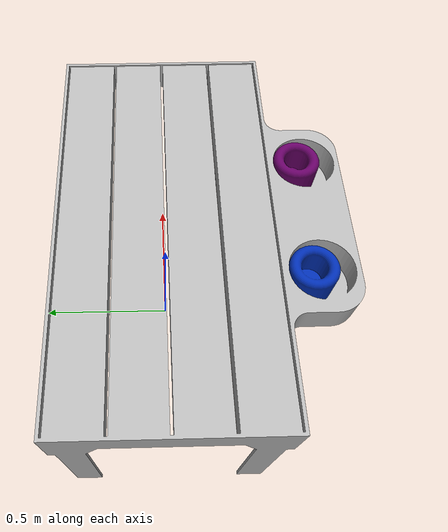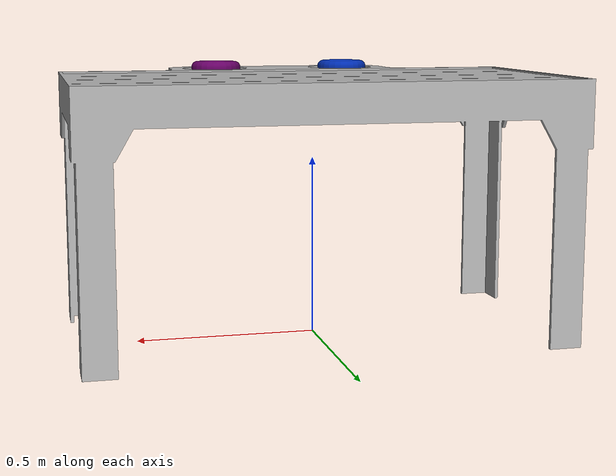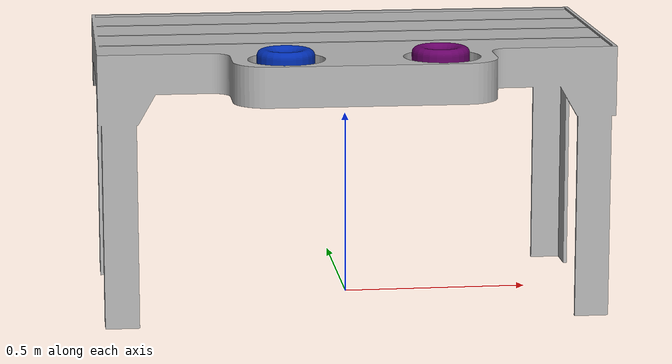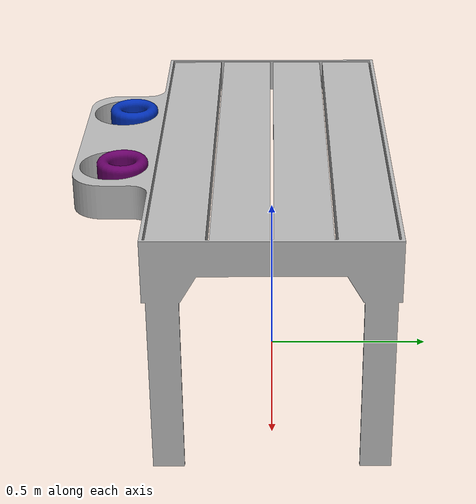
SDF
<?xml version="1.0" ?>
<sdf version="1.6">
  <model name="kit_tray_table">
    <static>true</static>

    <link name="kit_tray_table_link">
      <visual name="table">
        <geometry>
          <mesh>
            <uri>model://kit_tray_table/meshes/kit_tray_table.dae</uri>
          </mesh>
        </geometry>
      </visual>

      <visual name="tool_changer_1">
        <pose>-0.2 -0.435 0.635 0 0 0</pose>
        <geometry>
          <mesh>
            <uri>model://kit_tray_table/meshes/tool_changer.stl</uri>
          </mesh>
        </geometry>
        <material>
          <ambient>0.00 0.18 0.70 1.0</ambient>
          <diffuse>0.00 0.18 0.70 1.0</diffuse>
        </material>
      </visual>

      <visual name="tool_changer_2">
        <pose>0.2 -0.435 0.635 0 0 0</pose>
        <geometry>
          <mesh>
            <uri>model://kit_tray_table/meshes/tool_changer.stl</uri>
          </mesh>
        </geometry>
        <material>
          <ambient>0.4 0.0 0.4 1.0</ambient>
          <diffuse>0.4 0.0 0.4 1.0</diffuse>
        </material>
      </visual>

      <collision name="table_exterior">
        <geometry>
          <mesh>
            <uri>model://kit_tray_table/meshes/table_collision.stl</uri>
          </mesh>
        </geometry>
      </collision>

      <collision name="table_top">
        <pose>0 0 0.7 0 0 0</pose>
        <geometry>
          <box>
            <size>1.34 0.68 0.05</size>
          </box>
        </geometry>
      </collision>

      <collision name="tool_changer_1_collision">
        <pose>-0.2 -0.435 0.635 0 0 0</pose>
        <geometry>
          <mesh>
            <uri>model://kit_tray_table/meshes/tool_changer.stl</uri>
          </mesh>
        </geometry>
      </collision>

      <collision name="tool_changer_2_collision">
        <pose>0.2 -0.435 0.635 0 0 0</pose>
        <geometry>
          <mesh>
            <uri>model://kit_tray_table/meshes/tool_changer.stl</uri>
          </mesh>
        </geometry>
      </collision>

    </link>
  </model>
</sdf>
